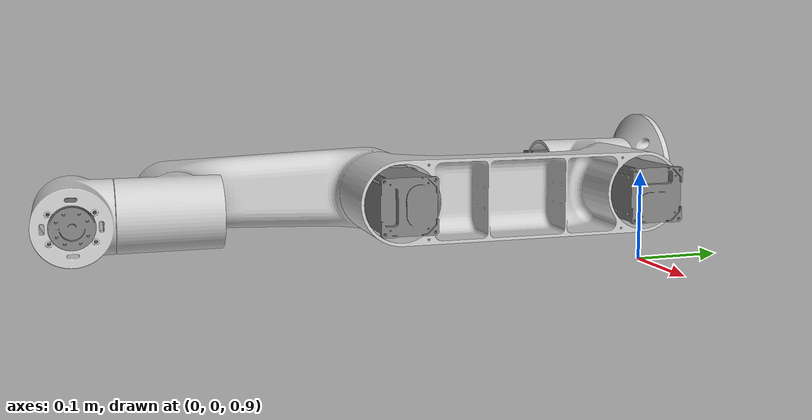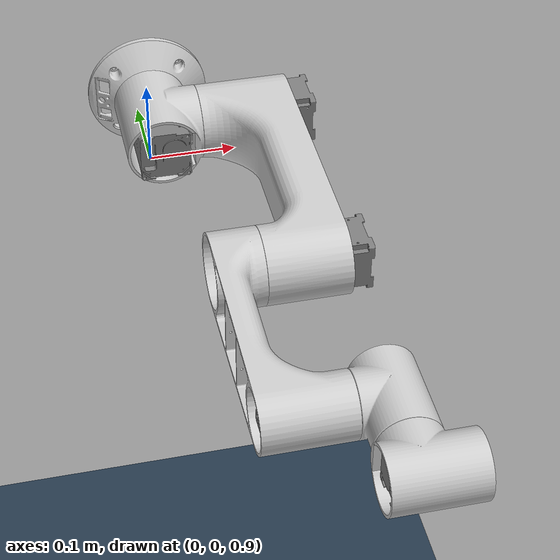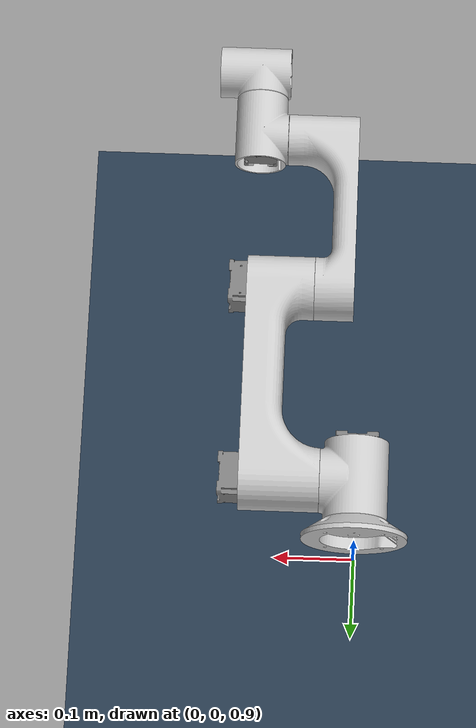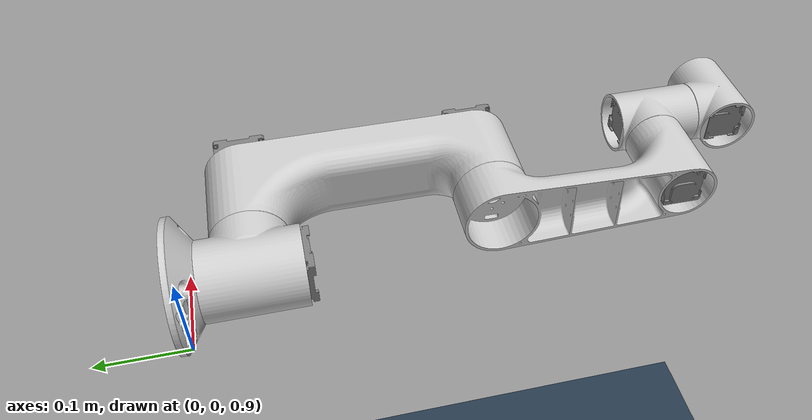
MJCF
<?xml version="1.0"?>
<mujoco model="separable_jaws">
    <!-- simulation configuration -->
    <!-- mesh directory -->
    <compiler meshdir="../meshes"/>
    <!-- physics configuration -->
    <option timestep="0.005" iterations="50" solver="Newton" tolerance="1e-10" gravity="0 0 -9.81"/>
    <!-- maximum size configuration -->
    <size nconmax="50" njmax="200" nstack="10000"/>

    <!-- visual effects -->
    <visual>
        <map force="0.1" zfar="30"/>
        <quality shadowsize="4096"/>
    </visual>

    <!-- assets for references in model -->
    <asset>
        <!-- textures -->
        <texture name="texplane" type="2d" builtin="checker" mark="cross" width="64" height="64"
            rgb1="0.2 0.3 0.4" rgb2="0.1 0.15 0.2" markrgb="0.8 0.8 0.8"/>
        <!-- materials -->
        <!-- texture repeating every 0.1 unit length-->
        <material name="matplane" reflectance="0.3" texture="texplane" texrepeat="10 10" texuniform="true"/>

        <!-- mesh files -->
        <mesh name="bracket" file="bracket.stl"/>
        <mesh name="shoulder" file="shoulder.stl"/>
        <mesh name="upper_arm" file="upper_arm.stl"/>
        <mesh name="lower_arm" file="lower_arm.stl"/>
        <mesh name="wrist" file="wrist.stl"/>
        <mesh name="dynamixel_pro_h42-20-s300" file="dynamixel_pro_h42-20-s300.stl"/>
        <mesh name="dynamixel_pro_h54-100-s500" file="dynamixel_pro_h54-100-s500.stl"/>
        <mesh name="dynamixel_pro_h54-200-s500" file="dynamixel_pro_h54-200-s500.stl"/>
    </asset>

    <!-- model description-->
    <worldbody>
        <!-- world description -->
        <light directional="true" diffuse="0.8 0.8 0.8" specular="0.2 0.2 0.2" pos="0 0 5" dir="0 0 -1"/>
        <geom name="floor" pos="0 0 0" size="0 0 0.1" type="plane" material="matplane"/>

        <!-- robot description -->
        <geom type="mesh" mesh="bracket" pos="0 0 1" euler="0 0 0" density="2700" rgba="0.8 0.8 0.8 1" group="0"/>
        <body name="shoulder" pos="0 -0.025 1" euler="0 0 0">
            <joint name="shoulder_joint" type="hinge" pos="0 0 0" axis="0 -1 0" frictionloss="20"/>
            <geom type="mesh" mesh="dynamixel_pro_h54-100-s500" pos="0 0 0" euler="0 90 0" density="2667.2321" rgba="0.5 0.5 0.5 1" group="1"/>
            <geom type="mesh" mesh="shoulder" pos="0 -0.00005 0" euler="0 0 0" density="2700" rgba="0.8 0.8 0.8 1" group="0"/>
            <body name="upper_arm" pos="0.045 -0.0505 0">
                <joint name="upper_arm_joint" type="hinge" pos="0 0 0" axis="1 0 0" frictionloss="40"/>
                <geom type="mesh" mesh="dynamixel_pro_h54-200-s500" pos="0 0 0" euler="180 0 90" density="2637.6109" rgba="0.5 0.5 0.5 1" group="1"/>
                <geom type="mesh" mesh="upper_arm" pos="0.00005 0 0" euler="0 0 0" density="2700" rgba="0.8 0.8 0.8 1" group="0"/>
                <geom type="mesh" mesh="dynamixel_pro_h54-100-s500" pos="0.015 -0.25 0" euler="-90 0 90" density="2667.2321" rgba="0.5 0.5 0.5 1" group="1"/>
                <body name="lower_arm" pos="0.015 -0.25 0">
                    <joint name="lower_arm_joint" pos="0 0 0" axis="1 0 0" frictionloss="20"/>
                    <geom type="mesh" mesh="lower_arm" pos="0 0 0" euler="0 0 0" density="2700" rgba="0.8 0.8 0.8 1" group="0"/>
                    <geom type="mesh" mesh="dynamixel_pro_h42-20-s300" pos="0.0405 -0.2 0" euler="0 180 90" density="2607.1681" rgba="0.5 0.5 0.5 1" group="1"/>
                    <body name="wrist" pos="0.0405 -0.2 0" euler="0 0 0">
                        <joint name="wrist_joint" pos="0 0 0" axis="1 0 0" frictionloss="10"/>
                        <geom type="mesh" mesh="wrist" pos="0 0 0" euler="0 0 0" density="2700" rgba="0.8 0.8 0.8 1" group="0"/>
                        <geom type="mesh" mesh="dynamixel_pro_h42-20-s300" pos="0.035 -0.055 0" euler="0 -90 180" density="2607.1681" rgba="0.5 0.5 0.5 1" group="1"/>
                        <body name="palm" pos="0.035 -0.0555 0" euler="0 180 -90">
                            <joint name="palm_joint" pos="0 0 0" axis="1 0 0" frictionloss="10"/>
                            <geom type="mesh" mesh="wrist" pos="0 0 0" euler="0 0 0" density="2700" rgba="0.8 0.8 0.8 1" group="0"/>
                            <geom type="mesh" mesh="dynamixel_pro_h42-20-s300" pos="0.035 -0.055 0" euler="0 -90 180" density="2607.1681" rgba="0.5 0.5 0.5 1" group="1"/>
                        </body>
                    </body>
                </body>
            </body>
        </body>
    </worldbody>

    <!-- actuators to drive the robot -->
    <actuator>
        <position name="shoulder_servo" joint="shoulder_joint" kp="300"/>
        <position name="upper_arm_servo" joint="upper_arm_joint" kp="300"/>
        <position name="lower_arm_servo" joint="lower_arm_joint" kp="300"/>
        <position name="wrist_servo" joint="wrist_joint" kp="100"/>
        <position name="palm_servo" joint="palm_joint" kp="100"/>
    </actuator>
</mujoco>
